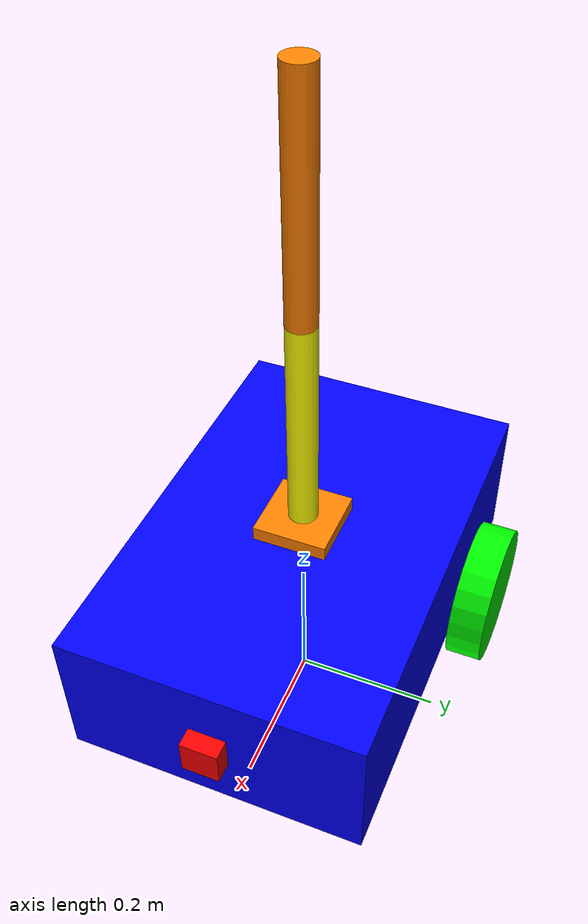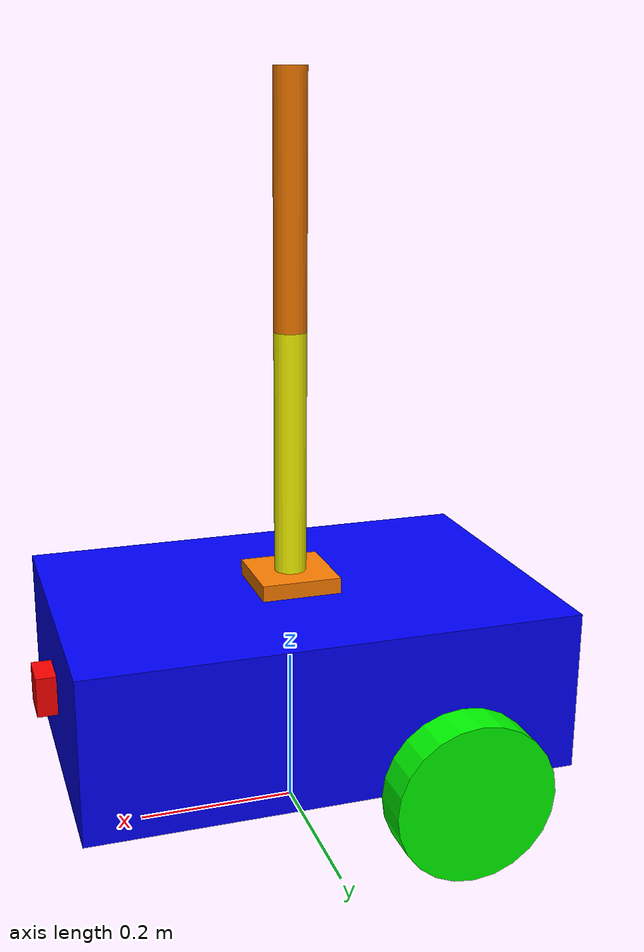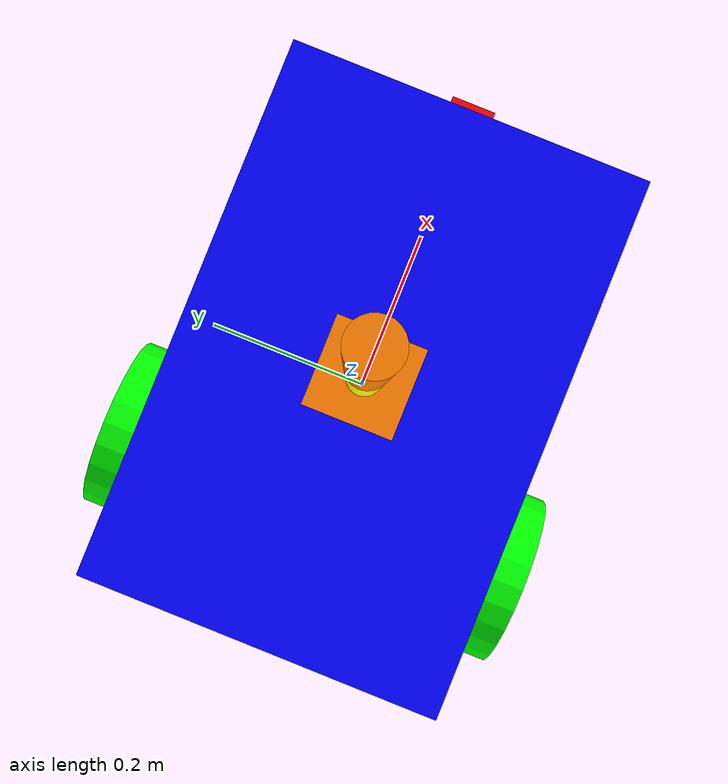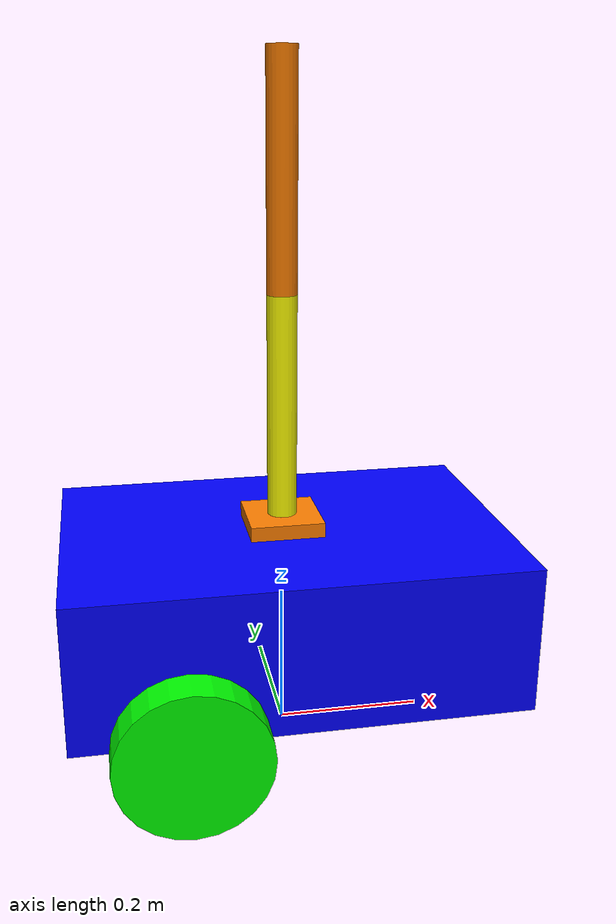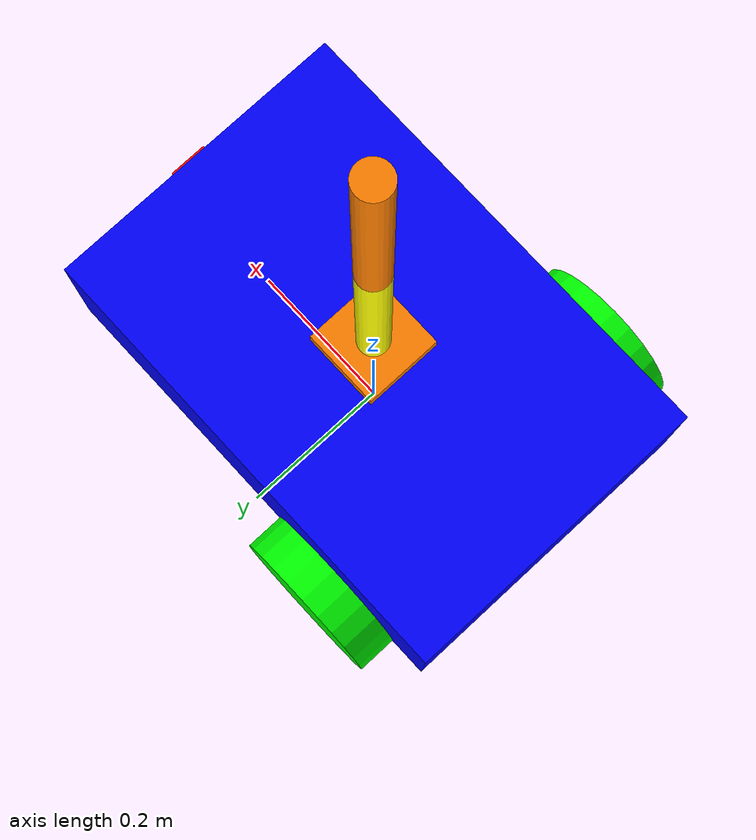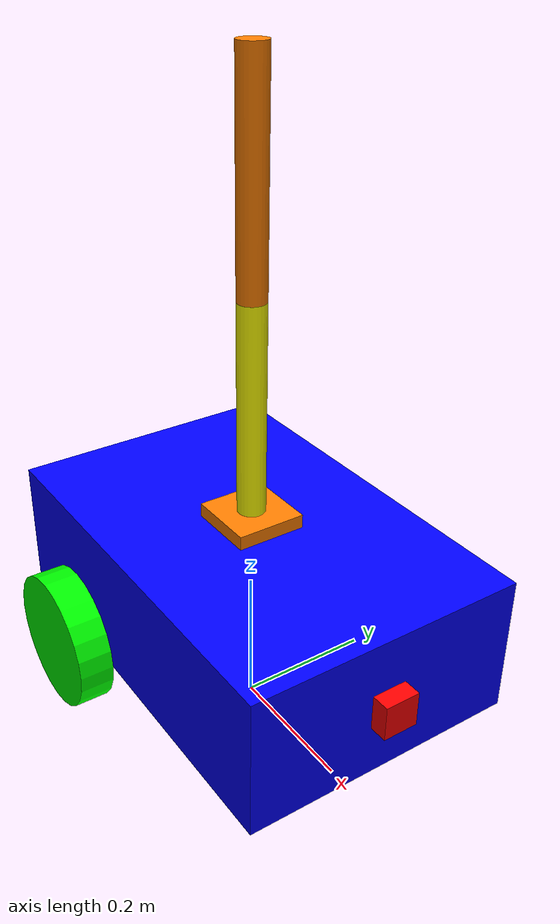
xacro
<?xml version="1.0"?>
<robot name="Castor Wheel Robot" xmlns:xacro="http://www.ros.org/wiki/xacro">

    <!-- Common Properties File -->
    <xacro:include filename="common_properties.xacro"/>

    <!-- Mobile Base File -->
    <xacro:include filename="mobile_base.xacro"/>

    <!-- Mobile Base Gazebo Plugins -->
    <xacro:include filename="mobile_base_gazebo.xacro"/>

    <!-- Sensor File -->
    <xacro:include filename="sensor.xacro"/>

    <!-- Arm File -->
    <xacro:include filename="arm.xacro"/>

    <!-- Arm Gazebo Plugins -->
    <xacro:include filename="arm_gazebo.xacro"/>

    <!-- Joint between base_footprint and arm -->
    <joint name="base_footprint_arm_base_joint" type="fixed">
        <parent link="base_footprint"/>
        <child link="arm_base_link"/>
        <origin xyz="0 0 ${base_height + wheel_radius}" rpy="0 0 0"/>
    </joint>
</robot>

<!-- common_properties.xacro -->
<robot xmlns:xacro="http://www.ros.org/wiki/xacro">
    <!-- Material Blue -->
    <material name="blue">
        <color rgba="0 0 1 1"/>
    </material>
    <!-- Material Red -->
    <material name="red">
        <color rgba="1 0 0 1"/>
    </material>
    <!-- Material Green -->
    <material name="green">
        <color rgba="0 1 0 1"/>
    </material>
    <!-- Material Orange -->
    <material name="orange">
        <color rgba="1 0.5 0 1"/>
    </material>
    <!-- Material Yellow -->
    <material name="yellow">
        <color rgba="1 1 0 1"/>
    </material>

    <!-- Inertial Tags -->
    <!-- Box Inertia -->
    <xacro:macro name="box_inertia" params="m l w h xyz rpy">
        <inertial>
            <origin xyz="${xyz}" rpy="${rpy}"/>
            <mass value="${m}"/>
            <inertia ixx="${(m/12)*(h*h+l*l)}" ixy="0.0" ixz="0.0" iyy="${(m/12)*(h*h+w*w)}" iyz="0.0" izz="${(m/12)*(w*w+l*l)}"/>
        </inertial>
    </xacro:macro>
    <!-- Cylinder Inertia -->
    <xacro:macro name="cylinder_inertia" params="m r l xyz rpy">
        <inertial>
            <origin xyz="${xyz}" rpy="${rpy}"/>
            <mass value="${m}"/>
            <inertia ixx="${(m/12)*((3*r*r)+(l*l))}" ixy="0.0" ixz="0.0" iyy="${(m/12)*((3*r*r)+(l*l))}" iyz="0.0" izz="${(m/2)*r*r}"/>
        </inertial>
    </xacro:macro>
    <!-- Sphere Inertia -->
    <xacro:macro name="sphere_inertia" params="m r xyz rpy">
        <inertial>
            <origin xyz="${xyz}" rpy="${rpy}"/>
            <mass value="${m}"/>
            <inertia ixx="${2/5*m*r*r}" ixy="0.0" ixz="0.0" iyy="${2/5*m*r*r}" iyz="0.0" izz="${2/5*m*r*r}"/>
        </inertial>
    </xacro:macro>
</robot>

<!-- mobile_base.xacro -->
<robot xmlns:xacro="http://www.ros.org/wiki/xacro">
    <!-- Macros -->
    <xacro:property name="base_length" value="0.6"/>
    <xacro:property name="base_width" value="0.4"/>
    <xacro:property name="base_height" value="0.2"/>
    <xacro:property name="wheel_radius" value="0.1"/>
    <xacro:property name="wheel_length" value="0.05"/>

    <!-- Empty footprint link -->
    <link name="base_footprint">
    </link>
    <!-- Robot base link -->
    <link name="base_link">
        <visual>
            <geometry>
                <box size="${base_length} ${base_width} ${base_height}"/>
            </geometry>
            <material name="blue"/>
            <origin xyz="0 0 ${base_height/2}" rpy="0 0 0"/>
        </visual>
        <collision>
            <geometry>
                <box size="${base_length} ${base_width} ${base_height}"/>
            </geometry>
            <origin xyz="0 0 ${base_height/2}" rpy="0 0 0"/>
        </collision>
        <xacro:box_inertia m="5.0" l="${3*base_length}" w="${3*base_width}" h="${3*base_height}" xyz="0 0 ${base_height/2}" rpy="0 0 0"/>
    </link>
    <!-- Joint between base_footprint and base -->
    <joint name="base_footprint_base_link_joint" type="fixed">
        <parent link="base_footprint"/>
        <child link="base_link"/>
        <origin xyz="0 0 ${wheel_radius}" rpy="0 0 0"/>
    </joint>
    <!-- Left Wheel Link -->
    <link name="left_wheel">
        <visual>
            <geometry>
                <cylinder radius="${wheel_radius}" length="${wheel_length}"/>
            </geometry>
            <material name="green"/>
            <origin xyz="0 0 0" rpy="${pi/2} 0 0"/>
        </visual>
        <collision>
            <geometry>
                <cylinder radius="${wheel_radius}" length="${wheel_length}"/>
            </geometry>
            <origin xyz="0 0 0" rpy="${pi/2} 0 0"/>
        </collision>
        <xacro:cylinder_inertia m="1.0" r="${3*wheel_radius}" l="${3*wheel_length}" xyz="0 0 0" rpy="${pi/2} 0 0"/>
    </link>
    <!-- Joint between base and left wheel -->
    <joint name="base_link_left_wheel_joint" type="continuous">
        <parent link="base_link"/>
        <child link="left_wheel"/>
        <origin xyz="${-base_length/4} ${(base_width/2) + (wheel_length/2)} 0" rpy="0 0 0"/>
        <axis xyz="0 1 0"/>
    </joint>
    <!-- Right Wheel Link -->
    <link name="right_wheel">
        <visual>
            <geometry>
                <cylinder radius="${wheel_radius}" length="${wheel_length}"/>
            </geometry>
            <material name="green"/>
            <origin xyz="0 0 0" rpy="${pi/2} 0 0"/>
        </visual>
        <collision>
            <geometry>
                <cylinder radius="${wheel_radius}" length="${wheel_length}"/>
            </geometry>
            <origin xyz="0 0 0" rpy="${pi/2} 0 0"/>
        </collision>
        <xacro:cylinder_inertia m="1.0" r="${3*wheel_radius}" l="${3*wheel_length}" xyz="0 0 0" rpy="${pi/2} 0 0"/>
    </link>
    <!-- Joint between base and right wheel -->
    <joint name="base_link_right_wheel_joint" type="continuous">
        <parent link="base_link"/>
        <child link="right_wheel"/>
        <origin xyz="${-base_length/4} ${-((base_width/2) + (wheel_length/2))} 0" rpy="0 0 0"/>
        <axis xyz="0 1 0"/>
    </joint>
    <!-- Castor Wheel Link -->
    <link name="castor_wheel">
        <visual>
            <geometry>
                <sphere radius="${wheel_radius/2}"/>
            </geometry>
            <material name="green"/>
            <origin xyz="0 0 0" rpy="0 0 0"/>
        </visual>
        <collision>
            <geometry>
                <sphere radius="${wheel_radius/2}"/>
            </geometry>
            <origin xyz="0 0 0" rpy="0 0 0"/>
        </collision>
        <xacro:sphere_inertia m="0.5" r="${3*wheel_radius/2}" xyz="0 0 0" rpy="0 0 0"/>
    </link>
    <!-- Joint between base and castor wheel -->
    <joint name="base_link_castor_wheel_joint" type="fixed">
        <parent link="base_link"/>
        <child link="castor_wheel"/>
        <origin xyz="${base_length/3} 0 ${-wheel_radius/2}" rpy="0 0 0"/>
    </joint>
</robot>

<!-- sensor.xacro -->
<robot xmlns:xacro="http://www.ros.org/wiki/xacro">

    <!-- Camera Link -->
    <link name="camera_link">
        <visual>
            <geometry>
                <box size="0.025 0.05 0.05"/>
            </geometry>
            <material name="red"/>
            <orgin xyz="0 0 0" rpy="0 0 0"/>
        </visual>
        <collision>
            <geometry>
                <box size="0.025 0.05 0.05"/>
            </geometry>
            <orgin xyz="0 0 0" rpy="0 0 0"/>
        </collision>
        <xacro:box_inertia m="0.5" l="0.025" w="0.05" h="0.05" xyz="0 0 0" rpy="0 0 0"/>
    </link>
    <!-- Joint between base and camera -->
    <joint name="base_link_camera_link_joint" type="fixed">
        <parent link="base_link"/>
        <child link="camera_link"/>
        <origin xyz="${(base_length+0.025)/2} 0 ${base_height/2}" rpy="0 0 0"/>
    </joint>
    <!-- Gazebo Color -->
    <gazebo reference="camera_link">
        <material>Gazebo/Red</material>
        <sensor name="camera_sensor" type="camera">
            <pose> 0 0 0 0 0 0</pose>
            <visualize>true</visualize>
            <update_rate>10.0</update_rate>
            <plugin name="camera_plugin" filename="libgazebo_ros_camera.so">
                <frame_name>camera_link</frame_name>
            </plugin>
        </sensor>
    </gazebo>
</robot>

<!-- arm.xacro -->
<robot xmlns:xacro="http://www.ros.org/wiki/xacro">
    <!-- Macros -->
    <xacro:property name="arm_base_length" value="0.1"/>
    <xacro:property name="arm_base_width" value="0.1"/>
    <xacro:property name="arm_base_height" value="0.02"/>
    <xacro:property name="arm_radius" value="0.02"/>
    <xacro:property name="arm_length" value="0.3"/>

    <!-- Arm Base Link -->
    <link name="arm_base_link">
        <visual>
            <geometry>
                <box size="${arm_base_length} ${arm_base_width} ${arm_base_height}"/>
            </geometry>
            <material name="orange"/>
            <origin xyz="0 0 ${arm_base_height/2}" rpy="0 0 0"/>
        </visual>
        <collision>
            <geometry>
                <box size="${arm_base_length} ${arm_base_width} ${arm_base_height}"/>
            </geometry>
            <origin xyz="0 0 ${arm_base_height/2}" rpy="0 0 0"/>
        </collision>
        <xacro:box_inertia m="0.5" l="${arm_base_length}" w="${arm_base_width}" h="${arm_base_height}" xyz="0 0 ${arm_base_height}" rpy="0 0 0"/>
    </link>

    <!-- Forearm link -->
    <link name="forearm_link">
        <visual>
            <geometry>
                <cylinder radius="${arm_radius}" length="${arm_length}"/>
            </geometry>
            <material name="yellow"/>
            <origin xyz="0 0 ${arm_length/2}" rpy="0 0 0"/>
        </visual>
        <collision>
            <geometry>
                <cylinder radius="${arm_radius}" length="${arm_length}"/>
            </geometry>
            <origin xyz="0 0 ${arm_length/2}" rpy="0 0 0"/>
        </collision>
        <xacro:cylinder_inertia m="0.3" r="${arm_radius}" l="${arm_length}" xyz="0 0 ${arm_length/2}" rpy="0 0 0"/>
    </link>

    <!-- Joint between arm_base_link and forearm_link -->
    <joint name="arm_base_forearm_joint" type="revolute">
        <parent link="arm_base_link"/>
        <child link="forearm_link"/>
        <origin xyz="0 0 ${arm_base_height}" rpy="0 0 0"/>
        <axis xyz="0 1 0"/>
        <dynamics friction="0.05" damping="0.1"/>
        <limit lower="0" upper="${pi/2}" effort="100" velocity="100"/>
    </joint>

    <!-- Hand Link -->
    <link name="hand_link">
        <visual>
            <geometry>
                <cylinder radius="${arm_radius}" length="${arm_length}"/>
            </geometry>
            <material name="orange"/>
            <origin xyz="0 0 ${arm_length/2}" rpy="0 0 0"/>
        </visual>
        <collision>
            <geometry>
                <cylinder radius="${arm_radius}" length="${arm_length}"/>
            </geometry>
            <origin xyz="0 0 ${arm_length/2}" rpy="0 0 0"/>
        </collision>
        <xacro:cylinder_inertia m="0.3" r="${arm_radius}" l="${arm_length}" xyz="0 0 ${arm_length/2}" rpy="0 0 0"/>
    </link>

    <!-- Joint between forearm_link and hand_link -->
    <joint name="forearm_hand_joint" type="revolute">
        <parent link="forearm_link"/>
        <child link="hand_link"/>
        <origin xyz="0 0 ${arm_length}" rpy="0 0 0"/>
        <axis xyz="0 1 0"/>
        <dynamics friction="0.05" damping="0.1"/>
        <limit lower="0" upper="${pi/2}" effort="100" velocity="100"/>
    </joint>
</robot>
